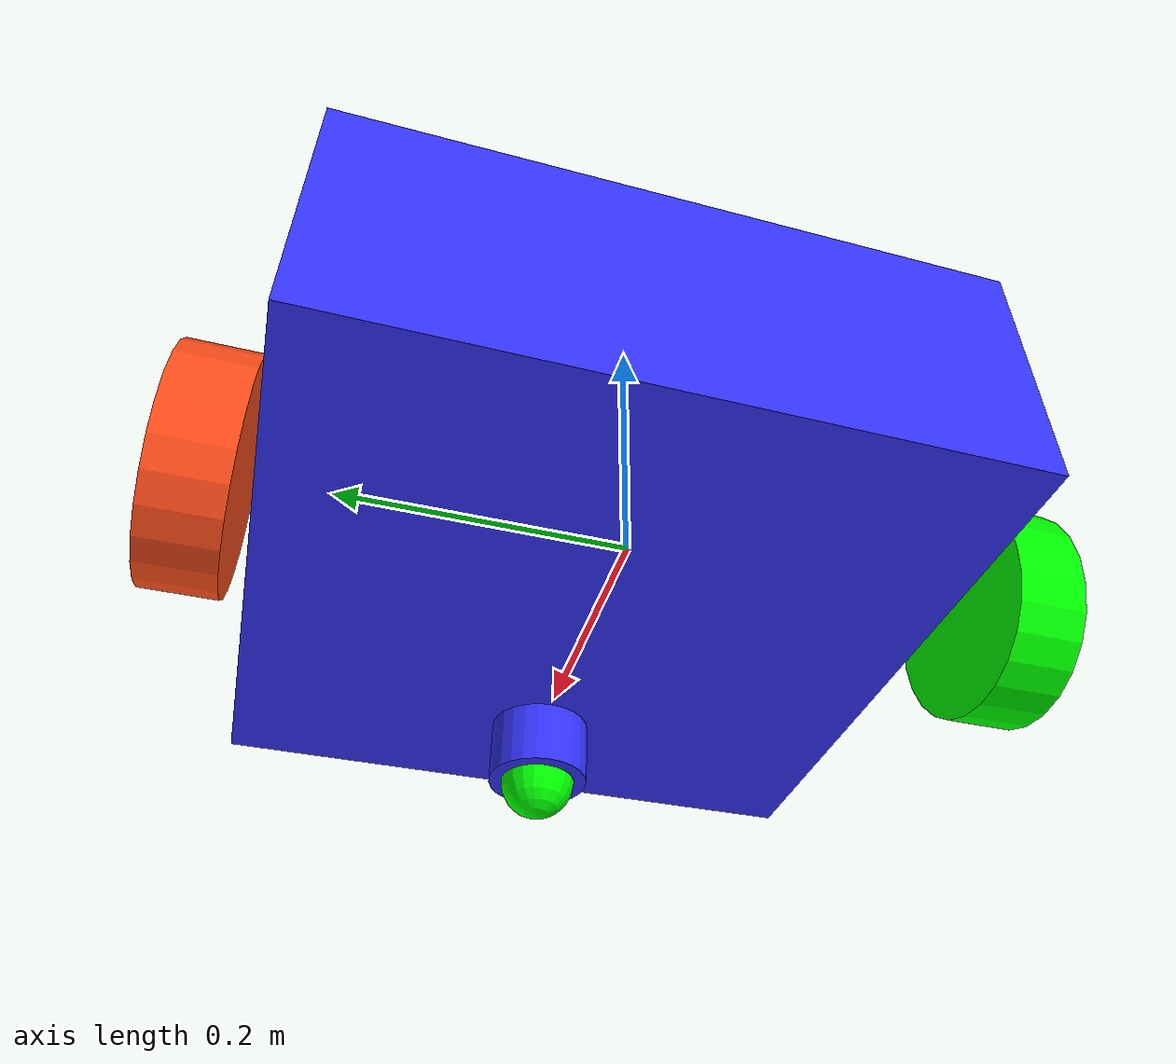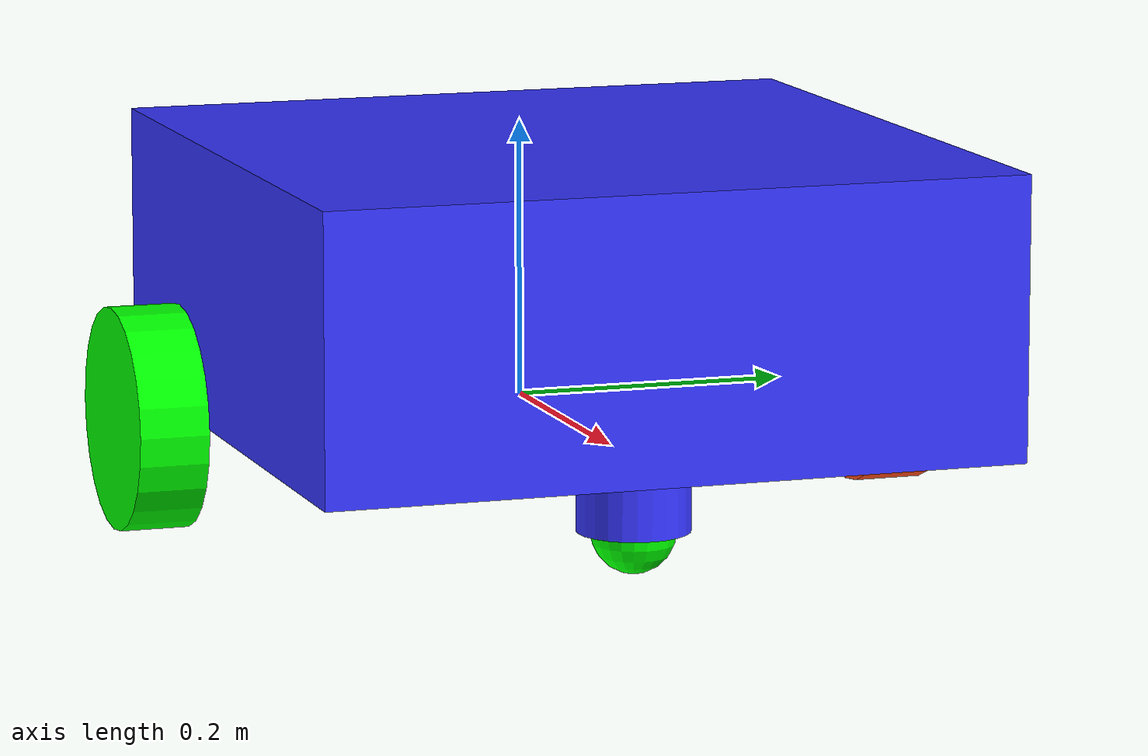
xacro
<?xml version="1.0"?>

<robot xmlns:xacro="http://www.ros.org/wiki/xacro">
    <xacro:include filename="material.xacro" />
    <xacro:include filename="inertial_macros.xacro" />

    <link name="base_link">
    </link>

    <joint name="base_footprint_joint" type="fixed">
        <origin xyz="0.0 0.0 0.0" rpy="0.0 0.0 0.0"/>
        <parent link="base_link"/>
        <child link="base_footprint"/>
    </joint>

    <link name="base_footprint">
    </link>
    <!--          CHASSIS           -->
    <joint name="chassis_joint" type="fixed">
        <origin xyz="-0.15 0.0 0.0" rpy="0.0 0.0 0.0" />
        <parent link="base_link" />
        <child link="chassis_link" />
    </joint>

    <link name="chassis_link">
        <visual>
            <origin xyz="0.25 0.0 0.1" rpy="0.0 0.0 0.0" />
            <geometry>
                <box size="0.5 0.5 0.2" />
            </geometry>
            <material name="blue" />
        </visual>
        <collision>
            <origin xyz="0.25 0.0 0.1" rpy="0.0 0.0 0.0" />
            <geometry>
                <box size="0.5 0.5 0.2" />
            </geometry>
        </collision>

        <xacro:inertial_box mass="5" x="0.5" y="0.5" z="0.2">
            <origin xyz="0.25 0 0.1" rpy="0 0 0" />
        </xacro:inertial_box>
    </link>
    <gazebo reference="chassis_link">
        <material>Gazebo/Blue</material>
    </gazebo>
    <!--          LEFT WHEEL           -->

    <joint name="left_wheel_joint" type="continuous">
        <origin xyz="0.0 0.28 0.0" rpy="-${pi/2} 0.0 0.0" />
        <parent link="base_link" />
        <child link="left_wheel_link" />
        <axis xyz="0.0 0.0 1" />
    </joint>

    <link name="left_wheel_link">
        <visual>
            <geometry>
                <cylinder radius="0.08" length="0.05" />
            </geometry>
            <material name="orange" />
        </visual>
        <collision>
            <geometry>
                <sphere radius="0.08" />
            </geometry>
        </collision>

        <xacro:inertial_cylinder mass="0.9" length="0.05" radius="0.08">
            <origin xyz="0 0 0" rpy="0 0 0" />
        </xacro:inertial_cylinder>
    </link>

    <gazebo reference="left_wheel_link">
        <material>Gazebo/Orange</material>
    </gazebo>
    <!--          RIGHT WHEEL           -->

    <joint name="right_wheel_joint" type="continuous">
        <parent link="base_link" />
        <child link="right_wheel_link" />
        <origin xyz="0.0 -0.28 0.0" rpy="${pi/2} 0.0 0.0" />
        <axis xyz="0.0 0.0 -1" />
    </joint>

    <link name="right_wheel_link">
        <visual>
            <geometry>
                <cylinder radius="0.08" length="0.05" />
            </geometry>
            <material name="green" />
        </visual>
        <collision>
            <geometry>
                <sphere radius="0.08" />
            </geometry>
        </collision>

        <xacro:inertial_cylinder mass="0.9" length="0.05" radius="0.08">
            <origin xyz="0 0 0" rpy="0 0 0" />
        </xacro:inertial_cylinder>
    </link>

    <gazebo reference="right_wheel_link">
        <material>Gazebo/Green</material>
    </gazebo>
    <!--          CASTER WHEEL           -->

    <joint name="caster_base_joint" type="fixed">
        <origin xyz="0.25 0.0 -0.025" rpy="0.0 0.0 0.0" />
        <parent link="base_link" />
        <child link="caster_base_link" />
    </joint>

    <link name="caster_base_link">
        <visual>
            <geometry>
                <cylinder radius="0.04" length="0.05" />
            </geometry>
            <material name="blue" />
        </visual>
        <collision>
            <geometry>
                <cylinder radius="0.04" length="0.05" />
            </geometry>
        </collision>

        <xacro:inertial_cylinder mass="0.5" length="0.05" radius="0.04">
            <origin xyz="0 0 0" rpy="0 0 0" />
        </xacro:inertial_cylinder>
    </link>
    <gazebo reference="caster_base_link">
        <material>Gazebo/Blue</material>
    </gazebo>

    <joint name="caster_joint" type="fixed">
        <origin xyz="0.0 0.0 -0.025" rpy="0.0 0.0 0.0" />
        <parent link="caster_base_link" />
        <child link="caster_wheel_link" />
    </joint>

    <link name="caster_wheel_link">
        <visual>
            <geometry>
                <sphere radius="0.03" />
            </geometry>
            <material name="green" />
        </visual>
        <collision>
            <geometry>
                <sphere radius="0.03" />
            </geometry>
        </collision>
        <xacro:inertial_sphere mass="0.8" radius="0.03">
            <origin xyz="0 0 0" rpy="0 0 0" />
        </xacro:inertial_sphere>
    </link>

    <gazebo reference="caster_wheel_link">
        <material>Gazebo/Green</material>
        <mu1 value="0.01" />
        <mu2 value="0.01" />
    </gazebo>

</robot>

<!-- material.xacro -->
<robot xmlns:xacro="http://www.ros.org/wiki/xacro">

    <material name="white">
        <color rgba="1 1 1 1" />
    </material>

    <material name="orange">
        <color rgba="1 0.3 0.1 1" />
    </material>

    <material name="blue">
        <color rgba="0.2 0.2 1 1" />
    </material>
    <material name="green">
        <color rgba="0.0 1 0 1" />
    </material>
    <material name="red">
        <color rgba="1.0 0 0 1" />
    </material>

    <material name="black">
        <color rgba="0 0 0 1" />
    </material>

    <material name="silver">
        <color rgba="0.700 0.700 0.700 1.000" />
    </material>

    <material name="yellow">
        <color rgba="1 1 0 1.000" />
    </material>

</robot>
